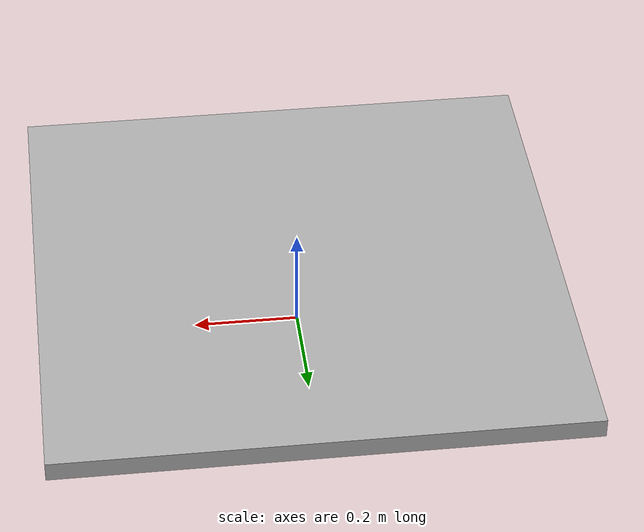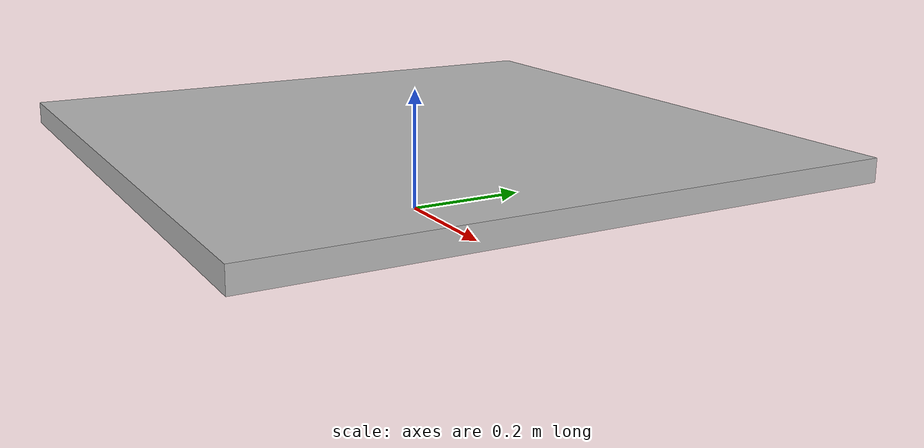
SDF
<?xml version ="1.0"?>
<sdf version="1.6">
  <model name="aruco">
    <static>true</static>
    <link name="link">

      <visual name="visual1">
        <cast_shadows>false</cast_shadows>
        <pose> 0 0 0.1 1.57 0 0</pose>
        <geometry>
          <mesh>
            <uri>model://start_zone/meshes/start_zone.obj</uri>
            <scale>0.5 0.5 0.5</scale>

          </mesh>
        </geometry>
      </visual>

    </link>
  </model>
</sdf>
